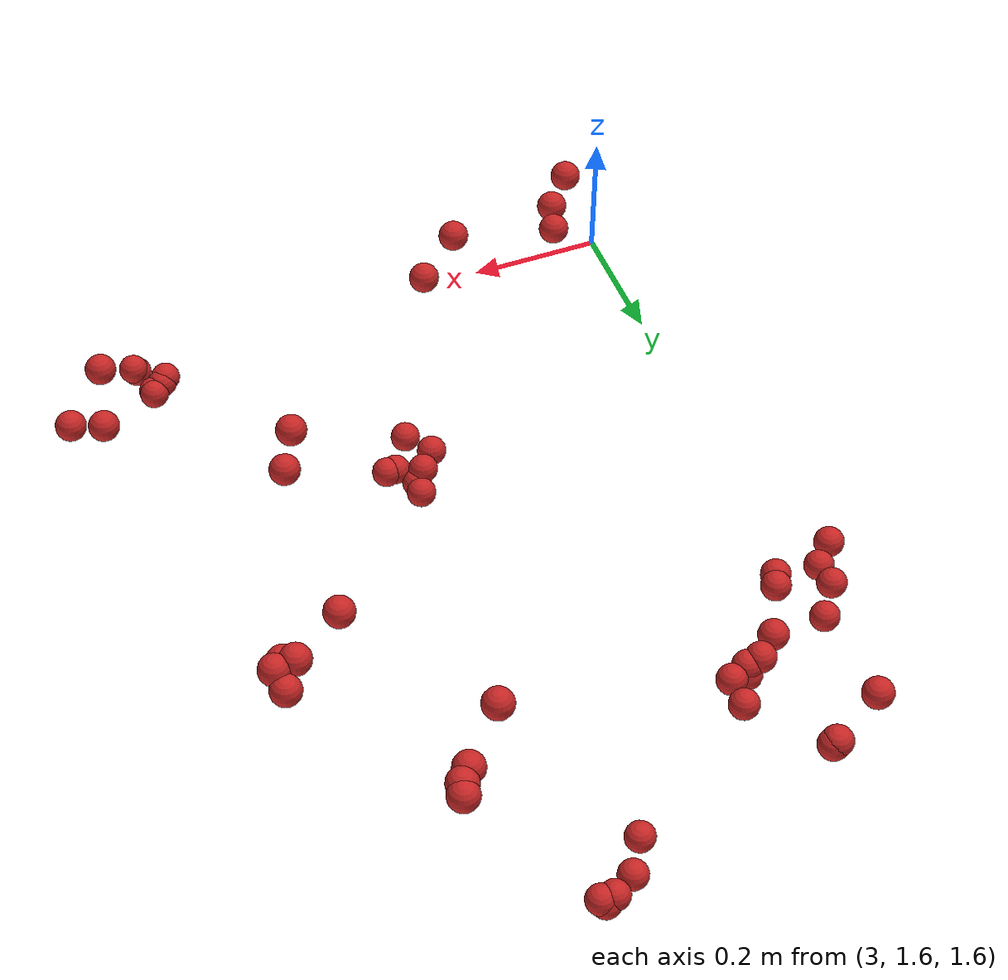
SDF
<sdf version="1.4">
 <model name="fruit_population">
  <static>true</static>
  <link name="fruit_0">
   <pose>3.1051538905238676 2.48347807523468 1.6664061205725373 0 0 0</pose>
   <collision name="fruit_collision_0"><geometry><sphere><radius>0.022</radius></sphere></geometry></collision>
   <visual name="visual">
    <geometry><sphere><radius>0.022</radius></sphere></geometry>
    <material><script><name>Gazebo/Red</name></script></material>
   </visual>
   <inertial>
    <mass>0.05</mass>
    <inertia>
     <ixx>9.679999999999999e-06</ixx>
     <ixy>0.0</ixy>
     <ixz>0.0</ixz>
     <iyy>9.679999999999999e-06</iyy>
     <iyz>0.0</iyz>
     <izz>9.679999999999999e-06</izz>
    </inertia>
   </inertial>
   <sensor name="fruit_contact_0" type="contact">
    <plugin name="contact_plugin_0" filename="libcontact_plugin.so"/>
    <contact><collision>fruit_collision_0</collision><topic>fruit_contact_topic_0</topic></contact>
   </sensor>
  </link>
  <link name="fruit_4">
   <pose>3.3687367709839258 2.652097096640187 1.5509448509547805 0 0 0</pose>
   <collision name="fruit_collision_4"><geometry><sphere><radius>0.022</radius></sphere></geometry></collision>
   <visual name="visual">
    <geometry><sphere><radius>0.022</radius></sphere></geometry>
    <material><script><name>Gazebo/Red</name></script></material>
   </visual>
   <inertial>
    <mass>0.05</mass>
    <inertia>
     <ixx>9.679999999999999e-06</ixx>
     <ixy>0.0</ixy>
     <ixz>0.0</ixz>
     <iyy>9.679999999999999e-06</iyy>
     <iyz>0.0</iyz>
     <izz>9.679999999999999e-06</izz>
    </inertia>
   </inertial>
   <sensor name="fruit_contact_4" type="contact">
    <plugin name="contact_plugin_4" filename="libcontact_plugin.so"/>
    <contact><collision>fruit_collision_4</collision><topic>fruit_contact_topic_4</topic></contact>
   </sensor>
  </link>
  <link name="fruit_28">
   <pose>3.554712258012521 2.601305874039772 1.8632877246982513 0 0 0</pose>
   <collision name="fruit_collision_28"><geometry><sphere><radius>0.022</radius></sphere></geometry></collision>
   <visual name="visual">
    <geometry><sphere><radius>0.022</radius></sphere></geometry>
    <material><script><name>Gazebo/Red</name></script></material>
   </visual>
   <inertial>
    <mass>0.05</mass>
    <inertia>
     <ixx>9.679999999999999e-06</ixx>
     <ixy>0.0</ixy>
     <ixz>0.0</ixz>
     <iyy>9.679999999999999e-06</iyy>
     <iyz>0.0</iyz>
     <izz>9.679999999999999e-06</izz>
    </inertia>
   </inertial>
   <sensor name="fruit_contact_28" type="contact">
    <plugin name="contact_plugin_28" filename="libcontact_plugin.so"/>
    <contact><collision>fruit_collision_28</collision><topic>fruit_contact_topic_28</topic></contact>
   </sensor>
  </link>
  <link name="fruit_40">
   <pose>3.8505431500028386 1.811537241743277 1.809419432647807 0 0 0</pose>
   <collision name="fruit_collision_40"><geometry><sphere><radius>0.022</radius></sphere></geometry></collision>
   <visual name="visual">
    <geometry><sphere><radius>0.022</radius></sphere></geometry>
    <material><script><name>Gazebo/Red</name></script></material>
   </visual>
   <inertial>
    <mass>0.05</mass>
    <inertia>
     <ixx>9.679999999999999e-06</ixx>
     <ixy>0.0</ixy>
     <ixz>0.0</ixz>
     <iyy>9.679999999999999e-06</iyy>
     <iyz>0.0</iyz>
     <izz>9.679999999999999e-06</izz>
    </inertia>
   </inertial>
   <sensor name="fruit_contact_40" type="contact">
    <plugin name="contact_plugin_40" filename="libcontact_plugin.so"/>
    <contact><collision>fruit_collision_40</collision><topic>fruit_contact_topic_40</topic></contact>
   </sensor>
  </link>
  <link name="fruit_48">
   <pose>3.058009484291377 2.6784631916863084 1.7517118316881934 0 0 0</pose>
   <collision name="fruit_collision_48"><geometry><sphere><radius>0.022</radius></sphere></geometry></collision>
   <visual name="visual">
    <geometry><sphere><radius>0.022</radius></sphere></geometry>
    <material><script><name>Gazebo/Red</name></script></material>
   </visual>
   <inertial>
    <mass>0.05</mass>
    <inertia>
     <ixx>9.679999999999999e-06</ixx>
     <ixy>0.0</ixy>
     <ixz>0.0</ixz>
     <iyy>9.679999999999999e-06</iyy>
     <iyz>0.0</iyz>
     <izz>9.679999999999999e-06</izz>
    </inertia>
   </inertial>
   <sensor name="fruit_contact_48" type="contact">
    <plugin name="contact_plugin_48" filename="libcontact_plugin.so"/>
    <contact><collision>fruit_collision_48</collision><topic>fruit_contact_topic_48</topic></contact>
   </sensor>
  </link>
  <link name="fruit_59">
   <pose>3.6839090429035557 2.3730969039240657 1.8364332937913812 0 0 0</pose>
   <collision name="fruit_collision_59"><geometry><sphere><radius>0.022</radius></sphere></geometry></collision>
   <visual name="visual">
    <geometry><sphere><radius>0.022</radius></sphere></geometry>
    <material><script><name>Gazebo/Red</name></script></material>
   </visual>
   <inertial>
    <mass>0.05</mass>
    <inertia>
     <ixx>9.679999999999999e-06</ixx>
     <ixy>0.0</ixy>
     <ixz>0.0</ixz>
     <iyy>9.679999999999999e-06</iyy>
     <iyz>0.0</iyz>
     <izz>9.679999999999999e-06</izz>
    </inertia>
   </inertial>
   <sensor name="fruit_contact_59" type="contact">
    <plugin name="contact_plugin_59" filename="libcontact_plugin.so"/>
    <contact><collision>fruit_collision_59</collision><topic>fruit_contact_topic_59</topic></contact>
   </sensor>
  </link>
  <link name="fruit_79">
   <pose>3.07765343782995 1.6581352894948354 1.812186724855306 0 0 0</pose>
   <collision name="fruit_collision_79"><geometry><sphere><radius>0.022</radius></sphere></geometry></collision>
   <visual name="visual">
    <geometry><sphere><radius>0.022</radius></sphere></geometry>
    <material><script><name>Gazebo/Red</name></script></material>
   </visual>
   <inertial>
    <mass>0.05</mass>
    <inertia>
     <ixx>9.679999999999999e-06</ixx>
     <ixy>0.0</ixy>
     <ixz>0.0</ixz>
     <iyy>9.679999999999999e-06</iyy>
     <iyz>0.0</iyz>
     <izz>9.679999999999999e-06</izz>
    </inertia>
   </inertial>
   <sensor name="fruit_contact_79" type="contact">
    <plugin name="contact_plugin_79" filename="libcontact_plugin.so"/>
    <contact><collision>fruit_collision_79</collision><topic>fruit_contact_topic_79</topic></contact>
   </sensor>
  </link>
  <link name="fruit_111">
   <pose>3.420048387949056 1.877878083172961 1.5774016258961931 0 0 0</pose>
   <collision name="fruit_collision_111"><geometry><sphere><radius>0.022</radius></sphere></geometry></collision>
   <visual name="visual">
    <geometry><sphere><radius>0.022</radius></sphere></geometry>
    <material><script><name>Gazebo/Red</name></script></material>
   </visual>
   <inertial>
    <mass>0.05</mass>
    <inertia>
     <ixx>9.679999999999999e-06</ixx>
     <ixy>0.0</ixy>
     <ixz>0.0</ixz>
     <iyy>9.679999999999999e-06</iyy>
     <iyz>0.0</iyz>
     <izz>9.679999999999999e-06</izz>
    </inertia>
   </inertial>
   <sensor name="fruit_contact_111" type="contact">
    <plugin name="contact_plugin_111" filename="libcontact_plugin.so"/>
    <contact><collision>fruit_collision_111</collision><topic>fruit_contact_topic_111</topic></contact>
   </sensor>
  </link>
  <link name="fruit_150">
   <pose>3.642151462636166 2.0464251738400505 1.8382178810650933 0 0 0</pose>
   <collision name="fruit_collision_150"><geometry><sphere><radius>0.022</radius></sphere></geometry></collision>
   <visual name="visual">
    <geometry><sphere><radius>0.022</radius></sphere></geometry>
    <material><script><name>Gazebo/Red</name></script></material>
   </visual>
   <inertial>
    <mass>0.05</mass>
    <inertia>
     <ixx>9.679999999999999e-06</ixx>
     <ixy>0.0</ixy>
     <ixz>0.0</ixz>
     <iyy>9.679999999999999e-06</iyy>
     <iyz>0.0</iyz>
     <izz>9.679999999999999e-06</izz>
    </inertia>
   </inertial>
   <sensor name="fruit_contact_150" type="contact">
    <plugin name="contact_plugin_150" filename="libcontact_plugin.so"/>
    <contact><collision>fruit_collision_150</collision><topic>fruit_contact_topic_150</topic></contact>
   </sensor>
  </link>
  <link name="fruit_152">
   <pose>3.392030951698422 1.9163839718794125 1.5751003970539221 0 0 0</pose>
   <collision name="fruit_collision_152"><geometry><sphere><radius>0.022</radius></sphere></geometry></collision>
   <visual name="visual">
    <geometry><sphere><radius>0.022</radius></sphere></geometry>
    <material><script><name>Gazebo/Red</name></script></material>
   </visual>
   <inertial>
    <mass>0.05</mass>
    <inertia>
     <ixx>9.679999999999999e-06</ixx>
     <ixy>0.0</ixy>
     <ixz>0.0</ixz>
     <iyy>9.679999999999999e-06</iyy>
     <iyz>0.0</iyz>
     <izz>9.679999999999999e-06</izz>
    </inertia>
   </inertial>
   <sensor name="fruit_contact_152" type="contact">
    <plugin name="contact_plugin_152" filename="libcontact_plugin.so"/>
    <contact><collision>fruit_collision_152</collision><topic>fruit_contact_topic_152</topic></contact>
   </sensor>
  </link>
  <link name="fruit_164">
   <pose>2.942440268222291 2.332262213528256 1.6306609778466217 0 0 0</pose>
   <collision name="fruit_collision_164"><geometry><sphere><radius>0.022</radius></sphere></geometry></collision>
   <visual name="visual">
    <geometry><sphere><radius>0.022</radius></sphere></geometry>
    <material><script><name>Gazebo/Red</name></script></material>
   </visual>
   <inertial>
    <mass>0.05</mass>
    <inertia>
     <ixx>9.679999999999999e-06</ixx>
     <ixy>0.0</ixy>
     <ixz>0.0</ixz>
     <iyy>9.679999999999999e-06</iyy>
     <iyz>0.0</iyz>
     <izz>9.679999999999999e-06</izz>
    </inertia>
   </inertial>
   <sensor name="fruit_contact_164" type="contact">
    <plugin name="contact_plugin_164" filename="libcontact_plugin.so"/>
    <contact><collision>fruit_collision_164</collision><topic>fruit_contact_topic_164</topic></contact>
   </sensor>
  </link>
  <link name="fruit_173">
   <pose>3.2872494072217604 1.7311850948266816 1.8171865754631702 0 0 0</pose>
   <collision name="fruit_collision_173"><geometry><sphere><radius>0.022</radius></sphere></geometry></collision>
   <visual name="visual">
    <geometry><sphere><radius>0.022</radius></sphere></geometry>
    <material><script><name>Gazebo/Red</name></script></material>
   </visual>
   <inertial>
    <mass>0.05</mass>
    <inertia>
     <ixx>9.679999999999999e-06</ixx>
     <ixy>0.0</ixy>
     <ixz>0.0</ixz>
     <iyy>9.679999999999999e-06</iyy>
     <iyz>0.0</iyz>
     <izz>9.679999999999999e-06</izz>
    </inertia>
   </inertial>
   <sensor name="fruit_contact_173" type="contact">
    <plugin name="contact_plugin_173" filename="libcontact_plugin.so"/>
    <contact><collision>fruit_collision_173</collision><topic>fruit_contact_topic_173</topic></contact>
   </sensor>
  </link>
  <link name="fruit_203">
   <pose>3.187075861974075 2.5276570323329337 1.6573783781585514 0 0 0</pose>
   <collision name="fruit_collision_203"><geometry><sphere><radius>0.022</radius></sphere></geometry></collision>
   <visual name="visual">
    <geometry><sphere><radius>0.022</radius></sphere></geometry>
    <material><script><name>Gazebo/Red</name></script></material>
   </visual>
   <inertial>
    <mass>0.05</mass>
    <inertia>
     <ixx>9.679999999999999e-06</ixx>
     <ixy>0.0</ixy>
     <ixz>0.0</ixz>
     <iyy>9.679999999999999e-06</iyy>
     <iyz>0.0</iyz>
     <izz>9.679999999999999e-06</izz>
    </inertia>
   </inertial>
   <sensor name="fruit_contact_203" type="contact">
    <plugin name="contact_plugin_203" filename="libcontact_plugin.so"/>
    <contact><collision>fruit_collision_203</collision><topic>fruit_contact_topic_203</topic></contact>
   </sensor>
  </link>
  <link name="fruit_213">
   <pose>3.4162970861643753 1.9456808770240983 1.573928193266382 0 0 0</pose>
   <collision name="fruit_collision_213"><geometry><sphere><radius>0.022</radius></sphere></geometry></collision>
   <visual name="visual">
    <geometry><sphere><radius>0.022</radius></sphere></geometry>
    <material><script><name>Gazebo/Red</name></script></material>
   </visual>
   <inertial>
    <mass>0.05</mass>
    <inertia>
     <ixx>9.679999999999999e-06</ixx>
     <ixy>0.0</ixy>
     <ixz>0.0</ixz>
     <iyy>9.679999999999999e-06</iyy>
     <iyz>0.0</iyz>
     <izz>9.679999999999999e-06</izz>
    </inertia>
   </inertial>
   <sensor name="fruit_contact_213" type="contact">
    <plugin name="contact_plugin_213" filename="libcontact_plugin.so"/>
    <contact><collision>fruit_collision_213</collision><topic>fruit_contact_topic_213</topic></contact>
   </sensor>
  </link>
  <link name="fruit_227">
   <pose>3.4475643471649535 2.7248969536639844 1.5388114497863699 0 0 0</pose>
   <collision name="fruit_collision_227"><geometry><sphere><radius>0.022</radius></sphere></geometry></collision>
   <visual name="visual">
    <geometry><sphere><radius>0.022</radius></sphere></geometry>
    <material><script><name>Gazebo/Red</name></script></material>
   </visual>
   <inertial>
    <mass>0.05</mass>
    <inertia>
     <ixx>9.679999999999999e-06</ixx>
     <ixy>0.0</ixy>
     <ixz>0.0</ixz>
     <iyy>9.679999999999999e-06</iyy>
     <iyz>0.0</iyz>
     <izz>9.679999999999999e-06</izz>
    </inertia>
   </inertial>
   <sensor name="fruit_contact_227" type="contact">
    <plugin name="contact_plugin_227" filename="libcontact_plugin.so"/>
    <contact><collision>fruit_collision_227</collision><topic>fruit_contact_topic_227</topic></contact>
   </sensor>
  </link>
  <link name="fruit_234">
   <pose>2.9680893333348535 2.356038717287138 1.6163050279323476 0 0 0</pose>
   <collision name="fruit_collision_234"><geometry><sphere><radius>0.022</radius></sphere></geometry></collision>
   <visual name="visual">
    <geometry><sphere><radius>0.022</radius></sphere></geometry>
    <material><script><name>Gazebo/Red</name></script></material>
   </visual>
   <inertial>
    <mass>0.05</mass>
    <inertia>
     <ixx>9.679999999999999e-06</ixx>
     <ixy>0.0</ixy>
     <ixz>0.0</ixz>
     <iyy>9.679999999999999e-06</iyy>
     <iyz>0.0</iyz>
     <izz>9.679999999999999e-06</izz>
    </inertia>
   </inertial>
   <sensor name="fruit_contact_234" type="contact">
    <plugin name="contact_plugin_234" filename="libcontact_plugin.so"/>
    <contact><collision>fruit_collision_234</collision><topic>fruit_contact_topic_234</topic></contact>
   </sensor>
  </link>
  <link name="fruit_256">
   <pose>3.468112512171654 1.929453044533462 1.5693352383263681 0 0 0</pose>
   <collision name="fruit_collision_256"><geometry><sphere><radius>0.022</radius></sphere></geometry></collision>
   <visual name="visual">
    <geometry><sphere><radius>0.022</radius></sphere></geometry>
    <material><script><name>Gazebo/Red</name></script></material>
   </visual>
   <inertial>
    <mass>0.05</mass>
    <inertia>
     <ixx>9.679999999999999e-06</ixx>
     <ixy>0.0</ixy>
     <ixz>0.0</ixz>
     <iyy>9.679999999999999e-06</iyy>
     <iyz>0.0</iyz>
     <izz>9.679999999999999e-06</izz>
    </inertia>
   </inertial>
   <sensor name="fruit_contact_256" type="contact">
    <plugin name="contact_plugin_256" filename="libcontact_plugin.so"/>
    <contact><collision>fruit_collision_256</collision><topic>fruit_contact_topic_256</topic></contact>
   </sensor>
  </link>
  <link name="fruit_260">
   <pose>3.115315921867531 1.6974760838460916 1.7950519714643107 0 0 0</pose>
   <collision name="fruit_collision_260"><geometry><sphere><radius>0.022</radius></sphere></geometry></collision>
   <visual name="visual">
    <geometry><sphere><radius>0.022</radius></sphere></geometry>
    <material><script><name>Gazebo/Red</name></script></material>
   </visual>
   <inertial>
    <mass>0.05</mass>
    <inertia>
     <ixx>9.679999999999999e-06</ixx>
     <ixy>0.0</ixy>
     <ixz>0.0</ixz>
     <iyy>9.679999999999999e-06</iyy>
     <iyz>0.0</iyz>
     <izz>9.679999999999999e-06</izz>
    </inertia>
   </inertial>
   <sensor name="fruit_contact_260" type="contact">
    <plugin name="contact_plugin_260" filename="libcontact_plugin.so"/>
    <contact><collision>fruit_collision_260</collision><topic>fruit_contact_topic_260</topic></contact>
   </sensor>
  </link>
  <link name="fruit_269">
   <pose>3.760214803856396 2.426347315048023 1.8354263604291037 0 0 0</pose>
   <collision name="fruit_collision_269"><geometry><sphere><radius>0.022</radius></sphere></geometry></collision>
   <visual name="visual">
    <geometry><sphere><radius>0.022</radius></sphere></geometry>
    <material><script><name>Gazebo/Red</name></script></material>
   </visual>
   <inertial>
    <mass>0.05</mass>
    <inertia>
     <ixx>9.679999999999999e-06</ixx>
     <ixy>0.0</ixy>
     <ixz>0.0</ixz>
     <iyy>9.679999999999999e-06</iyy>
     <iyz>0.0</iyz>
     <izz>9.679999999999999e-06</izz>
    </inertia>
   </inertial>
   <sensor name="fruit_contact_269" type="contact">
    <plugin name="contact_plugin_269" filename="libcontact_plugin.so"/>
    <contact><collision>fruit_collision_269</collision><topic>fruit_contact_topic_269</topic></contact>
   </sensor>
  </link>
  <link name="fruit_301">
   <pose>3.7468030049652077 1.641912830404403 1.5683144119920096 0 0 0</pose>
   <collision name="fruit_collision_301"><geometry><sphere><radius>0.022</radius></sphere></geometry></collision>
   <visual name="visual">
    <geometry><sphere><radius>0.022</radius></sphere></geometry>
    <material><script><name>Gazebo/Red</name></script></material>
   </visual>
   <inertial>
    <mass>0.05</mass>
    <inertia>
     <ixx>9.679999999999999e-06</ixx>
     <ixy>0.0</ixy>
     <ixz>0.0</ixz>
     <iyy>9.679999999999999e-06</iyy>
     <iyz>0.0</iyz>
     <izz>9.679999999999999e-06</izz>
    </inertia>
   </inertial>
   <sensor name="fruit_contact_301" type="contact">
    <plugin name="contact_plugin_301" filename="libcontact_plugin.so"/>
    <contact><collision>fruit_collision_301</collision><topic>fruit_contact_topic_301</topic></contact>
   </sensor>
  </link>
  <link name="fruit_312">
   <pose>3.7228920197995548 1.6275308196926086 1.5772485761397872 0 0 0</pose>
   <collision name="fruit_collision_312"><geometry><sphere><radius>0.022</radius></sphere></geometry></collision>
   <visual name="visual">
    <geometry><sphere><radius>0.022</radius></sphere></geometry>
    <material><script><name>Gazebo/Red</name></script></material>
   </visual>
   <inertial>
    <mass>0.05</mass>
    <inertia>
     <ixx>9.679999999999999e-06</ixx>
     <ixy>0.0</ixy>
     <ixz>0.0</ixz>
     <iyy>9.679999999999999e-06</iyy>
     <iyz>0.0</iyz>
     <izz>9.679999999999999e-06</izz>
    </inertia>
   </inertial>
   <sensor name="fruit_contact_312" type="contact">
    <plugin name="contact_plugin_312" filename="libcontact_plugin.so"/>
    <contact><collision>fruit_collision_312</collision><topic>fruit_contact_topic_312</topic></contact>
   </sensor>
  </link>
  <link name="fruit_340">
   <pose>3.4302634883970016 1.9761365353522382 1.5582309200788618 0 0 0</pose>
   <collision name="fruit_collision_340"><geometry><sphere><radius>0.022</radius></sphere></geometry></collision>
   <visual name="visual">
    <geometry><sphere><radius>0.022</radius></sphere></geometry>
    <material><script><name>Gazebo/Red</name></script></material>
   </visual>
   <inertial>
    <mass>0.05</mass>
    <inertia>
     <ixx>9.679999999999999e-06</ixx>
     <ixy>0.0</ixy>
     <ixz>0.0</ixz>
     <iyy>9.679999999999999e-06</iyy>
     <iyz>0.0</iyz>
     <izz>9.679999999999999e-06</izz>
    </inertia>
   </inertial>
   <sensor name="fruit_contact_340" type="contact">
    <plugin name="contact_plugin_340" filename="libcontact_plugin.so"/>
    <contact><collision>fruit_collision_340</collision><topic>fruit_contact_topic_340</topic></contact>
   </sensor>
  </link>
  <link name="fruit_359">
   <pose>3.7298914794328537 1.63418355204875 1.573553996464567 0 0 0</pose>
   <collision name="fruit_collision_359"><geometry><sphere><radius>0.022</radius></sphere></geometry></collision>
   <visual name="visual">
    <geometry><sphere><radius>0.022</radius></sphere></geometry>
    <material><script><name>Gazebo/Red</name></script></material>
   </visual>
   <inertial>
    <mass>0.05</mass>
    <inertia>
     <ixx>9.679999999999999e-06</ixx>
     <ixy>0.0</ixy>
     <ixz>0.0</ixz>
     <iyy>9.679999999999999e-06</iyy>
     <iyz>0.0</iyz>
     <izz>9.679999999999999e-06</izz>
    </inertia>
   </inertial>
   <sensor name="fruit_contact_359" type="contact">
    <plugin name="contact_plugin_359" filename="libcontact_plugin.so"/>
    <contact><collision>fruit_collision_359</collision><topic>fruit_contact_topic_359</topic></contact>
   </sensor>
  </link>
  <link name="fruit_368">
   <pose>3.7906276763028752 2.4320267079976436 1.8338784586088372 0 0 0</pose>
   <collision name="fruit_collision_368"><geometry><sphere><radius>0.022</radius></sphere></geometry></collision>
   <visual name="visual">
    <geometry><sphere><radius>0.022</radius></sphere></geometry>
    <material><script><name>Gazebo/Red</name></script></material>
   </visual>
   <inertial>
    <mass>0.05</mass>
    <inertia>
     <ixx>9.679999999999999e-06</ixx>
     <ixy>0.0</ixy>
     <ixz>0.0</ixz>
     <iyy>9.679999999999999e-06</iyy>
     <iyz>0.0</iyz>
     <izz>9.679999999999999e-06</izz>
    </inertia>
   </inertial>
   <sensor name="fruit_contact_368" type="contact">
    <plugin name="contact_plugin_368" filename="libcontact_plugin.so"/>
    <contact><collision>fruit_collision_368</collision><topic>fruit_contact_topic_368</topic></contact>
   </sensor>
  </link>
  <link name="fruit_376">
   <pose>3.143521808717558 2.7256406804031337 1.7411195367616041 0 0 0</pose>
   <collision name="fruit_collision_376"><geometry><sphere><radius>0.022</radius></sphere></geometry></collision>
   <visual name="visual">
    <geometry><sphere><radius>0.022</radius></sphere></geometry>
    <material><script><name>Gazebo/Red</name></script></material>
   </visual>
   <inertial>
    <mass>0.05</mass>
    <inertia>
     <ixx>9.679999999999999e-06</ixx>
     <ixy>0.0</ixy>
     <ixz>0.0</ixz>
     <iyy>9.679999999999999e-06</iyy>
     <iyz>0.0</iyz>
     <izz>9.679999999999999e-06</izz>
    </inertia>
   </inertial>
   <sensor name="fruit_contact_376" type="contact">
    <plugin name="contact_plugin_376" filename="libcontact_plugin.so"/>
    <contact><collision>fruit_collision_376</collision><topic>fruit_contact_topic_376</topic></contact>
   </sensor>
  </link>
  <link name="fruit_385">
   <pose>3.1354169002619385 1.754073819798419 1.8027252051555258 0 0 0</pose>
   <collision name="fruit_collision_385"><geometry><sphere><radius>0.022</radius></sphere></geometry></collision>
   <visual name="visual">
    <geometry><sphere><radius>0.022</radius></sphere></geometry>
    <material><script><name>Gazebo/Red</name></script></material>
   </visual>
   <inertial>
    <mass>0.05</mass>
    <inertia>
     <ixx>9.679999999999999e-06</ixx>
     <ixy>0.0</ixy>
     <ixz>0.0</ixz>
     <iyy>9.679999999999999e-06</iyy>
     <iyz>0.0</iyz>
     <izz>9.679999999999999e-06</izz>
    </inertia>
   </inertial>
   <sensor name="fruit_contact_385" type="contact">
    <plugin name="contact_plugin_385" filename="libcontact_plugin.so"/>
    <contact><collision>fruit_collision_385</collision><topic>fruit_contact_topic_385</topic></contact>
   </sensor>
  </link>
  <link name="fruit_434">
   <pose>3.6680836734556364 2.094072382044935 1.816795808991236 0 0 0</pose>
   <collision name="fruit_collision_434"><geometry><sphere><radius>0.022</radius></sphere></geometry></collision>
   <visual name="visual">
    <geometry><sphere><radius>0.022</radius></sphere></geometry>
    <material><script><name>Gazebo/Red</name></script></material>
   </visual>
   <inertial>
    <mass>0.05</mass>
    <inertia>
     <ixx>9.679999999999999e-06</ixx>
     <ixy>0.0</ixy>
     <ixz>0.0</ixz>
     <iyy>9.679999999999999e-06</iyy>
     <iyz>0.0</iyz>
     <izz>9.679999999999999e-06</izz>
    </inertia>
   </inertial>
   <sensor name="fruit_contact_434" type="contact">
    <plugin name="contact_plugin_434" filename="libcontact_plugin.so"/>
    <contact><collision>fruit_collision_434</collision><topic>fruit_contact_topic_434</topic></contact>
   </sensor>
  </link>
  <link name="fruit_440">
   <pose>3.35391971963357 1.7857582388449311 1.801601861998683 0 0 0</pose>
   <collision name="fruit_collision_440"><geometry><sphere><radius>0.022</radius></sphere></geometry></collision>
   <visual name="visual">
    <geometry><sphere><radius>0.022</radius></sphere></geometry>
    <material><script><name>Gazebo/Red</name></script></material>
   </visual>
   <inertial>
    <mass>0.05</mass>
    <inertia>
     <ixx>9.679999999999999e-06</ixx>
     <ixy>0.0</ixy>
     <ixz>0.0</ixz>
     <iyy>9.679999999999999e-06</iyy>
     <iyz>0.0</iyz>
     <izz>9.679999999999999e-06</izz>
    </inertia>
   </inertial>
   <sensor name="fruit_contact_440" type="contact">
    <plugin name="contact_plugin_440" filename="libcontact_plugin.so"/>
    <contact><collision>fruit_collision_440</collision><topic>fruit_contact_topic_440</topic></contact>
   </sensor>
  </link>
  <link name="fruit_452">
   <pose>3.7741160455287948 2.412398768817333 1.8213229550002064 0 0 0</pose>
   <collision name="fruit_collision_452"><geometry><sphere><radius>0.022</radius></sphere></geometry></collision>
   <visual name="visual">
    <geometry><sphere><radius>0.022</radius></sphere></geometry>
    <material><script><name>Gazebo/Red</name></script></material>
   </visual>
   <inertial>
    <mass>0.05</mass>
    <inertia>
     <ixx>9.679999999999999e-06</ixx>
     <ixy>0.0</ixy>
     <ixz>0.0</ixz>
     <iyy>9.679999999999999e-06</iyy>
     <iyz>0.0</iyz>
     <izz>9.679999999999999e-06</izz>
    </inertia>
   </inertial>
   <sensor name="fruit_contact_452" type="contact">
    <plugin name="contact_plugin_452" filename="libcontact_plugin.so"/>
    <contact><collision>fruit_collision_452</collision><topic>fruit_contact_topic_452</topic></contact>
   </sensor>
  </link>
  <link name="fruit_469">
   <pose>3.7842170266202304 2.458033659546501 1.8206029130005195 0 0 0</pose>
   <collision name="fruit_collision_469"><geometry><sphere><radius>0.022</radius></sphere></geometry></collision>
   <visual name="visual">
    <geometry><sphere><radius>0.022</radius></sphere></geometry>
    <material><script><name>Gazebo/Red</name></script></material>
   </visual>
   <inertial>
    <mass>0.05</mass>
    <inertia>
     <ixx>9.679999999999999e-06</ixx>
     <ixy>0.0</ixy>
     <ixz>0.0</ixz>
     <iyy>9.679999999999999e-06</iyy>
     <iyz>0.0</iyz>
     <izz>9.679999999999999e-06</izz>
    </inertia>
   </inertial>
   <sensor name="fruit_contact_469" type="contact">
    <plugin name="contact_plugin_469" filename="libcontact_plugin.so"/>
    <contact><collision>fruit_collision_469</collision><topic>fruit_contact_topic_469</topic></contact>
   </sensor>
  </link>
  <link name="fruit_484">
   <pose>3.633450625807888 2.6858002757540125 1.844990508551723 0 0 0</pose>
   <collision name="fruit_collision_484"><geometry><sphere><radius>0.022</radius></sphere></geometry></collision>
   <visual name="visual">
    <geometry><sphere><radius>0.022</radius></sphere></geometry>
    <material><script><name>Gazebo/Red</name></script></material>
   </visual>
   <inertial>
    <mass>0.05</mass>
    <inertia>
     <ixx>9.679999999999999e-06</ixx>
     <ixy>0.0</ixy>
     <ixz>0.0</ixz>
     <iyy>9.679999999999999e-06</iyy>
     <iyz>0.0</iyz>
     <izz>9.679999999999999e-06</izz>
    </inertia>
   </inertial>
   <sensor name="fruit_contact_484" type="contact">
    <plugin name="contact_plugin_484" filename="libcontact_plugin.so"/>
    <contact><collision>fruit_collision_484</collision><topic>fruit_contact_topic_484</topic></contact>
   </sensor>
  </link>
  <link name="fruit_507">
   <pose>3.4531562644006786 1.9265342877670613 1.5667794699964561 0 0 0</pose>
   <collision name="fruit_collision_507"><geometry><sphere><radius>0.022</radius></sphere></geometry></collision>
   <visual name="visual">
    <geometry><sphere><radius>0.022</radius></sphere></geometry>
    <material><script><name>Gazebo/Red</name></script></material>
   </visual>
   <inertial>
    <mass>0.05</mass>
    <inertia>
     <ixx>9.679999999999999e-06</ixx>
     <ixy>0.0</ixy>
     <ixz>0.0</ixz>
     <iyy>9.679999999999999e-06</iyy>
     <iyz>0.0</iyz>
     <izz>9.679999999999999e-06</izz>
    </inertia>
   </inertial>
   <sensor name="fruit_contact_507" type="contact">
    <plugin name="contact_plugin_507" filename="libcontact_plugin.so"/>
    <contact><collision>fruit_collision_507</collision><topic>fruit_contact_topic_507</topic></contact>
   </sensor>
  </link>
  <link name="fruit_535">
   <pose>3.137298750085767 2.512309296414744 1.6654986964519856 0 0 0</pose>
   <collision name="fruit_collision_535"><geometry><sphere><radius>0.022</radius></sphere></geometry></collision>
   <visual name="visual">
    <geometry><sphere><radius>0.022</radius></sphere></geometry>
    <material><script><name>Gazebo/Red</name></script></material>
   </visual>
   <inertial>
    <mass>0.05</mass>
    <inertia>
     <ixx>9.679999999999999e-06</ixx>
     <ixy>0.0</ixy>
     <ixz>0.0</ixz>
     <iyy>9.679999999999999e-06</iyy>
     <iyz>0.0</iyz>
     <izz>9.679999999999999e-06</izz>
    </inertia>
   </inertial>
   <sensor name="fruit_contact_535" type="contact">
    <plugin name="contact_plugin_535" filename="libcontact_plugin.so"/>
    <contact><collision>fruit_collision_535</collision><topic>fruit_contact_topic_535</topic></contact>
   </sensor>
  </link>
  <link name="fruit_566">
   <pose>3.6381936181109995 2.70226960576613 1.84375479581305 0 0 0</pose>
   <collision name="fruit_collision_566"><geometry><sphere><radius>0.022</radius></sphere></geometry></collision>
   <visual name="visual">
    <geometry><sphere><radius>0.022</radius></sphere></geometry>
    <material><script><name>Gazebo/Red</name></script></material>
   </visual>
   <inertial>
    <mass>0.05</mass>
    <inertia>
     <ixx>9.679999999999999e-06</ixx>
     <ixy>0.0</ixy>
     <ixz>0.0</ixz>
     <iyy>9.679999999999999e-06</iyy>
     <iyz>0.0</iyz>
     <izz>9.679999999999999e-06</izz>
    </inertia>
   </inertial>
   <sensor name="fruit_contact_566" type="contact">
    <plugin name="contact_plugin_566" filename="libcontact_plugin.so"/>
    <contact><collision>fruit_collision_566</collision><topic>fruit_contact_topic_566</topic></contact>
   </sensor>
  </link>
  <link name="fruit_607">
   <pose>3.7473522365346406 1.6496221376759257 1.5704276178287389 0 0 0</pose>
   <collision name="fruit_collision_607"><geometry><sphere><radius>0.022</radius></sphere></geometry></collision>
   <visual name="visual">
    <geometry><sphere><radius>0.022</radius></sphere></geometry>
    <material><script><name>Gazebo/Red</name></script></material>
   </visual>
   <inertial>
    <mass>0.05</mass>
    <inertia>
     <ixx>9.679999999999999e-06</ixx>
     <ixy>0.0</ixy>
     <ixz>0.0</ixz>
     <iyy>9.679999999999999e-06</iyy>
     <iyz>0.0</iyz>
     <izz>9.679999999999999e-06</izz>
    </inertia>
   </inertial>
   <sensor name="fruit_contact_607" type="contact">
    <plugin name="contact_plugin_607" filename="libcontact_plugin.so"/>
    <contact><collision>fruit_collision_607</collision><topic>fruit_contact_topic_607</topic></contact>
   </sensor>
  </link>
  <link name="fruit_644">
   <pose>3.1858671993818044 2.5659817401028944 1.6492528571733571 0 0 0</pose>
   <collision name="fruit_collision_644"><geometry><sphere><radius>0.022</radius></sphere></geometry></collision>
   <visual name="visual">
    <geometry><sphere><radius>0.022</radius></sphere></geometry>
    <material><script><name>Gazebo/Red</name></script></material>
   </visual>
   <inertial>
    <mass>0.05</mass>
    <inertia>
     <ixx>9.679999999999999e-06</ixx>
     <ixy>0.0</ixy>
     <ixz>0.0</ixz>
     <iyy>9.679999999999999e-06</iyy>
     <iyz>0.0</iyz>
     <izz>9.679999999999999e-06</izz>
    </inertia>
   </inertial>
   <sensor name="fruit_contact_644" type="contact">
    <plugin name="contact_plugin_644" filename="libcontact_plugin.so"/>
    <contact><collision>fruit_collision_644</collision><topic>fruit_contact_topic_644</topic></contact>
   </sensor>
  </link>
  <link name="fruit_647">
   <pose>3.1575374484842724 2.5133805497438977 1.6579046459927544 0 0 0</pose>
   <collision name="fruit_collision_647"><geometry><sphere><radius>0.022</radius></sphere></geometry></collision>
   <visual name="visual">
    <geometry><sphere><radius>0.022</radius></sphere></geometry>
    <material><script><name>Gazebo/Red</name></script></material>
   </visual>
   <inertial>
    <mass>0.05</mass>
    <inertia>
     <ixx>9.679999999999999e-06</ixx>
     <ixy>0.0</ixy>
     <ixz>0.0</ixz>
     <iyy>9.679999999999999e-06</iyy>
     <iyz>0.0</iyz>
     <izz>9.679999999999999e-06</izz>
    </inertia>
   </inertial>
   <sensor name="fruit_contact_647" type="contact">
    <plugin name="contact_plugin_647" filename="libcontact_plugin.so"/>
    <contact><collision>fruit_collision_647</collision><topic>fruit_contact_topic_647</topic></contact>
   </sensor>
  </link>
  <link name="fruit_655">
   <pose>3.0472437122816016 2.3783254352686822 1.6288124406815747 0 0 0</pose>
   <collision name="fruit_collision_655"><geometry><sphere><radius>0.022</radius></sphere></geometry></collision>
   <visual name="visual">
    <geometry><sphere><radius>0.022</radius></sphere></geometry>
    <material><script><name>Gazebo/Red</name></script></material>
   </visual>
   <inertial>
    <mass>0.05</mass>
    <inertia>
     <ixx>9.679999999999999e-06</ixx>
     <ixy>0.0</ixy>
     <ixz>0.0</ixz>
     <iyy>9.679999999999999e-06</iyy>
     <iyz>0.0</iyz>
     <izz>9.679999999999999e-06</izz>
    </inertia>
   </inertial>
   <sensor name="fruit_contact_655" type="contact">
    <plugin name="contact_plugin_655" filename="libcontact_plugin.so"/>
    <contact><collision>fruit_collision_655</collision><topic>fruit_contact_topic_655</topic></contact>
   </sensor>
  </link>
  <link name="fruit_675">
   <pose>3.6173988974011366 2.6659612497632916 1.8445096885458019 0 0 0</pose>
   <collision name="fruit_collision_675"><geometry><sphere><radius>0.022</radius></sphere></geometry></collision>
   <visual name="visual">
    <geometry><sphere><radius>0.022</radius></sphere></geometry>
    <material><script><name>Gazebo/Red</name></script></material>
   </visual>
   <inertial>
    <mass>0.05</mass>
    <inertia>
     <ixx>9.679999999999999e-06</ixx>
     <ixy>0.0</ixy>
     <ixz>0.0</ixz>
     <iyy>9.679999999999999e-06</iyy>
     <iyz>0.0</iyz>
     <izz>9.679999999999999e-06</izz>
    </inertia>
   </inertial>
   <sensor name="fruit_contact_675" type="contact">
    <plugin name="contact_plugin_675" filename="libcontact_plugin.so"/>
    <contact><collision>fruit_collision_675</collision><topic>fruit_contact_topic_675</topic></contact>
   </sensor>
  </link>
  <link name="fruit_695">
   <pose>3.434217677129946 2.7217274529368534 1.5461994450318497 0 0 0</pose>
   <collision name="fruit_collision_695"><geometry><sphere><radius>0.022</radius></sphere></geometry></collision>
   <visual name="visual">
    <geometry><sphere><radius>0.022</radius></sphere></geometry>
    <material><script><name>Gazebo/Red</name></script></material>
   </visual>
   <inertial>
    <mass>0.05</mass>
    <inertia>
     <ixx>9.679999999999999e-06</ixx>
     <ixy>0.0</ixy>
     <ixz>0.0</ixz>
     <iyy>9.679999999999999e-06</iyy>
     <iyz>0.0</iyz>
     <izz>9.679999999999999e-06</izz>
    </inertia>
   </inertial>
   <sensor name="fruit_contact_695" type="contact">
    <plugin name="contact_plugin_695" filename="libcontact_plugin.so"/>
    <contact><collision>fruit_collision_695</collision><topic>fruit_contact_topic_695</topic></contact>
   </sensor>
  </link>
  <link name="fruit_708">
   <pose>3.4543597292737886 2.7221346565646436 1.546942189953069 0 0 0</pose>
   <collision name="fruit_collision_708"><geometry><sphere><radius>0.022</radius></sphere></geometry></collision>
   <visual name="visual">
    <geometry><sphere><radius>0.022</radius></sphere></geometry>
    <material><script><name>Gazebo/Red</name></script></material>
   </visual>
   <inertial>
    <mass>0.05</mass>
    <inertia>
     <ixx>9.679999999999999e-06</ixx>
     <ixy>0.0</ixy>
     <ixz>0.0</ixz>
     <iyy>9.679999999999999e-06</iyy>
     <iyz>0.0</iyz>
     <izz>9.679999999999999e-06</izz>
    </inertia>
   </inertial>
   <sensor name="fruit_contact_708" type="contact">
    <plugin name="contact_plugin_708" filename="libcontact_plugin.so"/>
    <contact><collision>fruit_collision_708</collision><topic>fruit_contact_topic_708</topic></contact>
   </sensor>
  </link>
  <link name="fruit_719">
   <pose>3.1595433969389246 2.5185951964193336 1.644476054798564 0 0 0</pose>
   <collision name="fruit_collision_719"><geometry><sphere><radius>0.022</radius></sphere></geometry></collision>
   <visual name="visual">
    <geometry><sphere><radius>0.022</radius></sphere></geometry>
    <material><script><name>Gazebo/Red</name></script></material>
   </visual>
   <inertial>
    <mass>0.05</mass>
    <inertia>
     <ixx>9.679999999999999e-06</ixx>
     <ixy>0.0</ixy>
     <ixz>0.0</ixz>
     <iyy>9.679999999999999e-06</iyy>
     <iyz>0.0</iyz>
     <izz>9.679999999999999e-06</izz>
    </inertia>
   </inertial>
   <sensor name="fruit_contact_719" type="contact">
    <plugin name="contact_plugin_719" filename="libcontact_plugin.so"/>
    <contact><collision>fruit_collision_719</collision><topic>fruit_contact_topic_719</topic></contact>
   </sensor>
  </link>
  <link name="fruit_725">
   <pose>3.765225780593922 1.598054202920847 1.5816216769925417 0 0 0</pose>
   <collision name="fruit_collision_725"><geometry><sphere><radius>0.022</radius></sphere></geometry></collision>
   <visual name="visual">
    <geometry><sphere><radius>0.022</radius></sphere></geometry>
    <material><script><name>Gazebo/Red</name></script></material>
   </visual>
   <inertial>
    <mass>0.05</mass>
    <inertia>
     <ixx>9.679999999999999e-06</ixx>
     <ixy>0.0</ixy>
     <ixz>0.0</ixz>
     <iyy>9.679999999999999e-06</iyy>
     <iyz>0.0</iyz>
     <izz>9.679999999999999e-06</izz>
    </inertia>
   </inertial>
   <sensor name="fruit_contact_725" type="contact">
    <plugin name="contact_plugin_725" filename="libcontact_plugin.so"/>
    <contact><collision>fruit_collision_725</collision><topic>fruit_contact_topic_725</topic></contact>
   </sensor>
  </link>
  <link name="fruit_753">
   <pose>3.9157417248074102 1.8894203008313601 1.7939938773788546 0 0 0</pose>
   <collision name="fruit_collision_753"><geometry><sphere><radius>0.022</radius></sphere></geometry></collision>
   <visual name="visual">
    <geometry><sphere><radius>0.022</radius></sphere></geometry>
    <material><script><name>Gazebo/Red</name></script></material>
   </visual>
   <inertial>
    <mass>0.05</mass>
    <inertia>
     <ixx>9.679999999999999e-06</ixx>
     <ixy>0.0</ixy>
     <ixz>0.0</ixz>
     <iyy>9.679999999999999e-06</iyy>
     <iyz>0.0</iyz>
     <izz>9.679999999999999e-06</izz>
    </inertia>
   </inertial>
   <sensor name="fruit_contact_753" type="contact">
    <plugin name="contact_plugin_753" filename="libcontact_plugin.so"/>
    <contact><collision>fruit_collision_753</collision><topic>fruit_contact_topic_753</topic></contact>
   </sensor>
  </link>
  <link name="fruit_756">
   <pose>3.7595334956167332 1.5956168287869024 1.5722036123797436 0 0 0</pose>
   <collision name="fruit_collision_756"><geometry><sphere><radius>0.022</radius></sphere></geometry></collision>
   <visual name="visual">
    <geometry><sphere><radius>0.022</radius></sphere></geometry>
    <material><script><name>Gazebo/Red</name></script></material>
   </visual>
   <inertial>
    <mass>0.05</mass>
    <inertia>
     <ixx>9.679999999999999e-06</ixx>
     <ixy>0.0</ixy>
     <ixz>0.0</ixz>
     <iyy>9.679999999999999e-06</iyy>
     <iyz>0.0</iyz>
     <izz>9.679999999999999e-06</izz>
    </inertia>
   </inertial>
   <sensor name="fruit_contact_756" type="contact">
    <plugin name="contact_plugin_756" filename="libcontact_plugin.so"/>
    <contact><collision>fruit_collision_756</collision><topic>fruit_contact_topic_756</topic></contact>
   </sensor>
  </link>
  <link name="fruit_763">
   <pose>3.138772639949874 2.7252511727617392 1.7449505025467085 0 0 0</pose>
   <collision name="fruit_collision_763"><geometry><sphere><radius>0.022</radius></sphere></geometry></collision>
   <visual name="visual">
    <geometry><sphere><radius>0.022</radius></sphere></geometry>
    <material><script><name>Gazebo/Red</name></script></material>
   </visual>
   <inertial>
    <mass>0.05</mass>
    <inertia>
     <ixx>9.679999999999999e-06</ixx>
     <ixy>0.0</ixy>
     <ixz>0.0</ixz>
     <iyy>9.679999999999999e-06</iyy>
     <iyz>0.0</iyz>
     <izz>9.679999999999999e-06</izz>
    </inertia>
   </inertial>
   <sensor name="fruit_contact_763" type="contact">
    <plugin name="contact_plugin_763" filename="libcontact_plugin.so"/>
    <contact><collision>fruit_collision_763</collision><topic>fruit_contact_topic_763</topic></contact>
   </sensor>
  </link>
  <link name="fruit_779">
   <pose>3.0369383139215875 2.35630304728976 1.6249771104018864 0 0 0</pose>
   <collision name="fruit_collision_779"><geometry><sphere><radius>0.022</radius></sphere></geometry></collision>
   <visual name="visual">
    <geometry><sphere><radius>0.022</radius></sphere></geometry>
    <material><script><name>Gazebo/Red</name></script></material>
   </visual>
   <inertial>
    <mass>0.05</mass>
    <inertia>
     <ixx>9.679999999999999e-06</ixx>
     <ixy>0.0</ixy>
     <ixz>0.0</ixz>
     <iyy>9.679999999999999e-06</iyy>
     <iyz>0.0</iyz>
     <izz>9.679999999999999e-06</izz>
    </inertia>
   </inertial>
   <sensor name="fruit_contact_779" type="contact">
    <plugin name="contact_plugin_779" filename="libcontact_plugin.so"/>
    <contact><collision>fruit_collision_779</collision><topic>fruit_contact_topic_779</topic></contact>
   </sensor>
  </link>
  <link name="fruit_783">
   <pose>3.4291243652886823 1.9530172912056192 1.5564223145293508 0 0 0</pose>
   <collision name="fruit_collision_783"><geometry><sphere><radius>0.022</radius></sphere></geometry></collision>
   <visual name="visual">
    <geometry><sphere><radius>0.022</radius></sphere></geometry>
    <material><script><name>Gazebo/Red</name></script></material>
   </visual>
   <inertial>
    <mass>0.05</mass>
    <inertia>
     <ixx>9.679999999999999e-06</ixx>
     <ixy>0.0</ixy>
     <ixz>0.0</ixz>
     <iyy>9.679999999999999e-06</iyy>
     <iyz>0.0</iyz>
     <izz>9.679999999999999e-06</izz>
    </inertia>
   </inertial>
   <sensor name="fruit_contact_783" type="contact">
    <plugin name="contact_plugin_783" filename="libcontact_plugin.so"/>
    <contact><collision>fruit_collision_783</collision><topic>fruit_contact_topic_783</topic></contact>
   </sensor>
  </link>
  <link name="fruit_784">
   <pose>3.8734879616702966 1.9109851972726273 1.799372178720469 0 0 0</pose>
   <collision name="fruit_collision_784"><geometry><sphere><radius>0.022</radius></sphere></geometry></collision>
   <visual name="visual">
    <geometry><sphere><radius>0.022</radius></sphere></geometry>
    <material><script><name>Gazebo/Red</name></script></material>
   </visual>
   <inertial>
    <mass>0.05</mass>
    <inertia>
     <ixx>9.679999999999999e-06</ixx>
     <ixy>0.0</ixy>
     <ixz>0.0</ixz>
     <iyy>9.679999999999999e-06</iyy>
     <iyz>0.0</iyz>
     <izz>9.679999999999999e-06</izz>
    </inertia>
   </inertial>
   <sensor name="fruit_contact_784" type="contact">
    <plugin name="contact_plugin_784" filename="libcontact_plugin.so"/>
    <contact><collision>fruit_collision_784</collision><topic>fruit_contact_topic_784</topic></contact>
   </sensor>
  </link>
  <link name="fruit_789">
   <pose>3.397900001937917 2.6980520172061433 1.5412754719867996 0 0 0</pose>
   <collision name="fruit_collision_789"><geometry><sphere><radius>0.022</radius></sphere></geometry></collision>
   <visual name="visual">
    <geometry><sphere><radius>0.022</radius></sphere></geometry>
    <material><script><name>Gazebo/Red</name></script></material>
   </visual>
   <inertial>
    <mass>0.05</mass>
    <inertia>
     <ixx>9.679999999999999e-06</ixx>
     <ixy>0.0</ixy>
     <ixz>0.0</ixz>
     <iyy>9.679999999999999e-06</iyy>
     <iyz>0.0</iyz>
     <izz>9.679999999999999e-06</izz>
    </inertia>
   </inertial>
   <sensor name="fruit_contact_789" type="contact">
    <plugin name="contact_plugin_789" filename="libcontact_plugin.so"/>
    <contact><collision>fruit_collision_789</collision><topic>fruit_contact_topic_789</topic></contact>
   </sensor>
  </link>
  <link name="fruit_804">
   <pose>2.964473373492015 2.390286807282803 1.6137012817184182 0 0 0</pose>
   <collision name="fruit_collision_804"><geometry><sphere><radius>0.022</radius></sphere></geometry></collision>
   <visual name="visual">
    <geometry><sphere><radius>0.022</radius></sphere></geometry>
    <material><script><name>Gazebo/Red</name></script></material>
   </visual>
   <inertial>
    <mass>0.05</mass>
    <inertia>
     <ixx>9.679999999999999e-06</ixx>
     <ixy>0.0</ixy>
     <ixz>0.0</ixz>
     <iyy>9.679999999999999e-06</iyy>
     <iyz>0.0</iyz>
     <izz>9.679999999999999e-06</izz>
    </inertia>
   </inertial>
   <sensor name="fruit_contact_804" type="contact">
    <plugin name="contact_plugin_804" filename="libcontact_plugin.so"/>
    <contact><collision>fruit_collision_804</collision><topic>fruit_contact_topic_804</topic></contact>
   </sensor>
  </link>
  <link name="fruit_805">
   <pose>2.998557196127683 2.4382878445345115 1.608795666736236 0 0 0</pose>
   <collision name="fruit_collision_805"><geometry><sphere><radius>0.022</radius></sphere></geometry></collision>
   <visual name="visual">
    <geometry><sphere><radius>0.022</radius></sphere></geometry>
    <material><script><name>Gazebo/Red</name></script></material>
   </visual>
   <inertial>
    <mass>0.05</mass>
    <inertia>
     <ixx>9.679999999999999e-06</ixx>
     <ixy>0.0</ixy>
     <ixz>0.0</ixz>
     <iyy>9.679999999999999e-06</iyy>
     <iyz>0.0</iyz>
     <izz>9.679999999999999e-06</izz>
    </inertia>
   </inertial>
   <sensor name="fruit_contact_805" type="contact">
    <plugin name="contact_plugin_805" filename="libcontact_plugin.so"/>
    <contact><collision>fruit_collision_805</collision><topic>fruit_contact_topic_805</topic></contact>
   </sensor>
  </link>
 </model>
</sdf>
